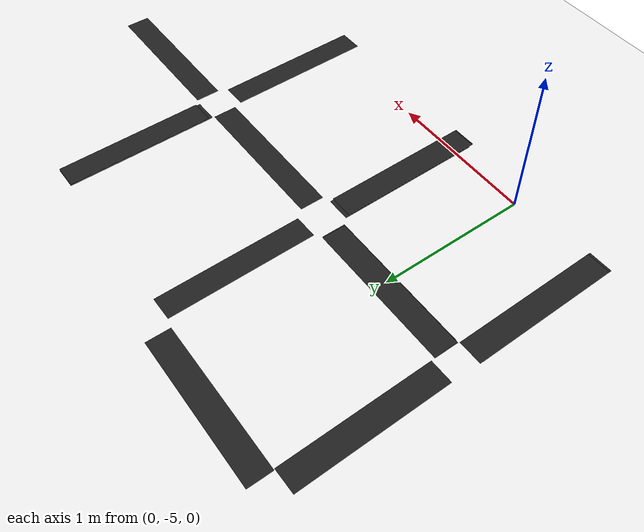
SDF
<sdf version="1.7">
 <world name="default">
  <model name="ground_plane">
   <static>1</static>
   <link name="link">
    <collision name="collision">
     <geometry><plane><normal>0 0 1</normal><size>100 100</size></plane></geometry>
     <surface>
      <contact><collide_bitmask>65535</collide_bitmask></contact>
      <friction><ode><mu>100</mu><mu2>50</mu2></ode></friction>
     </surface>
    </collision>
    <visual name="visual">
     <cast_shadows>0</cast_shadows>
     <geometry><plane><normal>0 0 1</normal><size>100 100</size></plane></geometry>
     <material>
      <script><uri>file://media/materials/scripts/gazebo.material</uri><name>Gazebo/White</name></script>
     </material>
    </visual>
   </link>
  </model>
  <model name="unit_box_clone_0_clone_clone_0_clone_clone">
   <link name="link">
    <inertial>
     <mass>1</mass>
     <inertia>
      <ixx>0.166667</ixx>
      <ixy>0</ixy>
      <ixz>0</ixz>
      <iyy>0.166667</iyy>
      <iyz>0</iyz>
      <izz>0.166667</izz>
     </inertia>
    </inertial>
    <visual name="visual">
     <geometry><box><size>0.983697 0.160776 0.000937</size></box></geometry>
     <material>
      <script><name>Gazebo/Black</name><uri>file://media/materials/scripts/gazebo.material</uri></script>
      <shader type="pixel"><normal_map>__default__</normal_map></shader>
      <ambient>0 0 0 1</ambient>
      <diffuse>0 0 0 1</diffuse>
      <specular>0.1 0.1 0.1 1</specular>
      <emissive>0 0 0 1</emissive>
     </material>
    </visual>
    <collision name="collision">
     <geometry><box><size>0.983697 0.160776 0.000937</size></box></geometry>
     <surface>
      <friction>
       <ode><mu>1</mu><mu2>1</mu2><fdir1>0 0 0</fdir1><slip1>0</slip1><slip2>0</slip2></ode>
       <torsional>
        <coefficient>1</coefficient>
        <patch_radius>0</patch_radius>
        <surface_radius>0</surface_radius>
        <use_patch_radius>1</use_patch_radius>
        <ode><slip>0</slip></ode>
       </torsional>
      </friction>
      <bounce><restitution_coefficient>0</restitution_coefficient><threshold>1e+06</threshold></bounce>
      <contact>
       <collide_without_contact>0</collide_without_contact>
       <collide_without_contact_bitmask>1</collide_without_contact_bitmask>
       <collide_bitmask>1</collide_bitmask>
       <ode>
        <soft_cfm>0</soft_cfm>
        <soft_erp>0.2</soft_erp>
        <kp>1e+13</kp>
        <kd>1</kd>
        <max_vel>0.01</max_vel>
        <min_depth>0</min_depth>
       </ode>
       <bullet>
        <split_impulse>1</split_impulse>
        <split_impulse_penetration_threshold>-0.01</split_impulse_penetration_threshold>
        <soft_cfm>0</soft_cfm>
        <soft_erp>0.2</soft_erp>
        <kp>1e+13</kp>
        <kd>1</kd>
       </bullet>
      </contact>
     </surface>
    </collision>
   </link>
   <static>0</static>
   <pose>0.595049 -3.38053 0.000464 0 -9e-06 -1.56217</pose>
  </model>
  <model name="unit_box_clone_0_clone_clone_0_clone_clone_clone">
   <link name="link">
    <inertial>
     <mass>1</mass>
     <inertia>
      <ixx>0.166667</ixx>
      <ixy>0</ixy>
      <ixz>0</ixz>
      <iyy>0.166667</iyy>
      <iyz>0</iyz>
      <izz>0.166667</izz>
     </inertia>
    </inertial>
    <visual name="visual">
     <geometry><box><size>1 0.160776 0.000937</size></box></geometry>
     <material>
      <script><name>Gazebo/Black</name><uri>file://media/materials/scripts/gazebo.material</uri></script>
      <shader type="pixel"><normal_map>__default__</normal_map></shader>
      <ambient>0 0 0 1</ambient>
      <diffuse>0 0 0 1</diffuse>
      <specular>0.1 0.1 0.1 1</specular>
      <emissive>0 0 0 1</emissive>
     </material>
    </visual>
    <collision name="collision">
     <geometry><box><size>1 0.160776 0.000937</size></box></geometry>
     <surface>
      <friction>
       <ode><mu>1</mu><mu2>1</mu2><fdir1>0 0 0</fdir1><slip1>0</slip1><slip2>0</slip2></ode>
       <torsional>
        <coefficient>1</coefficient>
        <patch_radius>0</patch_radius>
        <surface_radius>0</surface_radius>
        <use_patch_radius>1</use_patch_radius>
        <ode><slip>0</slip></ode>
       </torsional>
      </friction>
      <bounce><restitution_coefficient>0</restitution_coefficient><threshold>1e+06</threshold></bounce>
      <contact>
       <collide_without_contact>0</collide_without_contact>
       <collide_without_contact_bitmask>1</collide_without_contact_bitmask>
       <collide_bitmask>1</collide_bitmask>
       <ode>
        <soft_cfm>0</soft_cfm>
        <soft_erp>0.2</soft_erp>
        <kp>1e+13</kp>
        <kd>1</kd>
        <max_vel>0.01</max_vel>
        <min_depth>0</min_depth>
       </ode>
       <bullet>
        <split_impulse>1</split_impulse>
        <split_impulse_penetration_threshold>-0.01</split_impulse_penetration_threshold>
        <soft_cfm>0</soft_cfm>
        <soft_erp>0.2</soft_erp>
        <kp>1e+13</kp>
        <kd>1</kd>
       </bullet>
      </contact>
     </surface>
    </collision>
   </link>
   <static>0</static>
   <pose>1.82845 -4.64722 0.000469 0 0 -1.56225</pose>
  </model>
  <model name="unit_box_clone_0_clone_clone_0_clone_clone_clone_1">
   <link name="link">
    <inertial>
     <mass>1</mass>
     <inertia>
      <ixx>0.166667</ixx>
      <ixy>0</ixy>
      <ixz>0</ixz>
      <iyy>0.166667</iyy>
      <iyz>0</iyz>
      <izz>0.166667</izz>
     </inertia>
    </inertial>
    <visual name="visual">
     <geometry><box><size>1 0.160776 0.000937</size></box></geometry>
     <material>
      <script><name>Gazebo/Black</name><uri>file://media/materials/scripts/gazebo.material</uri></script>
      <shader type="pixel"><normal_map>__default__</normal_map></shader>
      <ambient>0 0 0 1</ambient>
      <diffuse>0 0 0 1</diffuse>
      <specular>0.1 0.1 0.1 1</specular>
      <emissive>0 0 0 1</emissive>
     </material>
    </visual>
    <collision name="collision">
     <geometry><box><size>1 0.160776 0.000937</size></box></geometry>
     <surface>
      <friction>
       <ode><mu>1</mu><mu2>1</mu2><fdir1>0 0 0</fdir1><slip1>0</slip1><slip2>0</slip2></ode>
       <torsional>
        <coefficient>1</coefficient>
        <patch_radius>0</patch_radius>
        <surface_radius>0</surface_radius>
        <use_patch_radius>1</use_patch_radius>
        <ode><slip>0</slip></ode>
       </torsional>
      </friction>
      <bounce><restitution_coefficient>0</restitution_coefficient><threshold>1e+06</threshold></bounce>
      <contact>
       <collide_without_contact>0</collide_without_contact>
       <collide_without_contact_bitmask>1</collide_without_contact_bitmask>
       <collide_bitmask>1</collide_bitmask>
       <ode>
        <soft_cfm>0</soft_cfm>
        <soft_erp>0.2</soft_erp>
        <kp>1e+13</kp>
        <kd>1</kd>
        <max_vel>0.01</max_vel>
        <min_depth>0</min_depth>
       </ode>
       <bullet>
        <split_impulse>1</split_impulse>
        <split_impulse_penetration_threshold>-0.01</split_impulse_penetration_threshold>
        <soft_cfm>0</soft_cfm>
        <soft_erp>0.2</soft_erp>
        <kp>1e+13</kp>
        <kd>1</kd>
       </bullet>
      </contact>
     </surface>
    </collision>
   </link>
   <static>0</static>
   <pose>-0.613913 -4.59039 0.000463 -1e-06 1.1e-05 -1.562</pose>
  </model>
  <model name="unit_box_clone_0_clone_clone_0_clone_1">
   <link name="link">
    <inertial>
     <mass>1</mass>
     <inertia>
      <ixx>0.166667</ixx>
      <ixy>0</ixy>
      <ixz>0</ixz>
      <iyy>0.166667</iyy>
      <iyz>0</iyz>
      <izz>0.166667</izz>
     </inertia>
    </inertial>
    <visual name="visual">
     <geometry><box><size>1 0.160776 0.000937</size></box></geometry>
     <material>
      <script><name>Gazebo/Black</name><uri>file://media/materials/scripts/gazebo.material</uri></script>
      <shader type="pixel"><normal_map>__default__</normal_map></shader>
      <ambient>0 0 0 1</ambient>
      <diffuse>0 0 0 1</diffuse>
      <specular>0.1 0.1 0.1 1</specular>
      <emissive>0 0 0 1</emissive>
     </material>
    </visual>
    <collision name="collision">
     <geometry><box><size>1 0.160776 0.000937</size></box></geometry>
     <surface>
      <friction>
       <ode><mu>1</mu><mu2>1</mu2><fdir1>0 0 0</fdir1><slip1>0</slip1><slip2>0</slip2></ode>
       <torsional>
        <coefficient>1</coefficient>
        <patch_radius>0</patch_radius>
        <surface_radius>0</surface_radius>
        <use_patch_radius>1</use_patch_radius>
        <ode><slip>0</slip></ode>
       </torsional>
      </friction>
      <bounce><restitution_coefficient>0</restitution_coefficient><threshold>1e+06</threshold></bounce>
      <contact>
       <collide_without_contact>0</collide_without_contact>
       <collide_without_contact_bitmask>1</collide_without_contact_bitmask>
       <collide_bitmask>1</collide_bitmask>
       <ode>
        <soft_cfm>0</soft_cfm>
        <soft_erp>0.2</soft_erp>
        <kp>1e+13</kp>
        <kd>1</kd>
        <max_vel>0.01</max_vel>
        <min_depth>0</min_depth>
       </ode>
       <bullet>
        <split_impulse>1</split_impulse>
        <split_impulse_penetration_threshold>-0.01</split_impulse_penetration_threshold>
        <soft_cfm>0</soft_cfm>
        <soft_erp>0.2</soft_erp>
        <kp>1e+13</kp>
        <kd>1</kd>
       </bullet>
      </contact>
     </surface>
    </collision>
   </link>
   <static>0</static>
   <pose>-0.021603 -3.98781 0.000431 1.6e-05 -6.2e-05 0.000146</pose>
  </model>
  <model name="unit_box_clone_0_clone_clone_0_clone_clone_1">
   <link name="link">
    <inertial>
     <mass>1</mass>
     <inertia>
      <ixx>0.166667</ixx>
      <ixy>0</ixy>
      <ixz>0</ixz>
      <iyy>0.166667</iyy>
      <iyz>0</iyz>
      <izz>0.166667</izz>
     </inertia>
    </inertial>
    <visual name="visual">
     <geometry><box><size>1 0.160776 0.000937</size></box></geometry>
     <material>
      <script><name>Gazebo/Black</name><uri>file://media/materials/scripts/gazebo.material</uri></script>
      <shader type="pixel"><normal_map>__default__</normal_map></shader>
      <ambient>0 0 0 1</ambient>
      <diffuse>0 0 0 1</diffuse>
      <specular>0.1 0.1 0.1 1</specular>
      <emissive>0 0 0 1</emissive>
     </material>
    </visual>
    <collision name="collision">
     <geometry><box><size>1 0.160776 0.000937</size></box></geometry>
     <surface>
      <friction>
       <ode><mu>1</mu><mu2>1</mu2><fdir1>0 0 0</fdir1><slip1>0</slip1><slip2>0</slip2></ode>
       <torsional>
        <coefficient>1</coefficient>
        <patch_radius>0</patch_radius>
        <surface_radius>0</surface_radius>
        <use_patch_radius>1</use_patch_radius>
        <ode><slip>0</slip></ode>
       </torsional>
      </friction>
      <bounce><restitution_coefficient>0</restitution_coefficient><threshold>1e+06</threshold></bounce>
      <contact>
       <collide_without_contact>0</collide_without_contact>
       <collide_without_contact_bitmask>1</collide_without_contact_bitmask>
       <collide_bitmask>1</collide_bitmask>
       <ode>
        <soft_cfm>0</soft_cfm>
        <soft_erp>0.2</soft_erp>
        <kp>1e+13</kp>
        <kd>1</kd>
        <max_vel>0.01</max_vel>
        <min_depth>0</min_depth>
       </ode>
       <bullet>
        <split_impulse>1</split_impulse>
        <split_impulse_penetration_threshold>-0.01</split_impulse_penetration_threshold>
        <soft_cfm>0</soft_cfm>
        <soft_erp>0.2</soft_erp>
        <kp>1e+13</kp>
        <kd>1</kd>
       </bullet>
      </contact>
     </surface>
    </collision>
   </link>
   <static>0</static>
   <pose>1.22708 -4.01051 0.000466 -0 -5e-06 -3.7e-05</pose>
  </model>
  <model name="unit_box_clone_0_clone_clone_0_clone_clone_0_clone">
   <link name="link">
    <inertial>
     <mass>1</mass>
     <inertia>
      <ixx>0.166667</ixx>
      <ixy>0</ixy>
      <ixz>0</ixz>
      <iyy>0.166667</iyy>
      <iyz>0</iyz>
      <izz>0.166667</izz>
     </inertia>
    </inertial>
    <visual name="visual">
     <geometry><box><size>1 0.160776 0.000937</size></box></geometry>
     <material>
      <script><name>Gazebo/Black</name><uri>file://media/materials/scripts/gazebo.material</uri></script>
      <shader type="pixel"><normal_map>__default__</normal_map></shader>
      <ambient>0 0 0 1</ambient>
      <diffuse>0 0 0 1</diffuse>
      <specular>0.1 0.1 0.1 1</specular>
      <emissive>0 0 0 1</emissive>
     </material>
    </visual>
    <collision name="collision">
     <geometry><box><size>1 0.160776 0.000937</size></box></geometry>
     <surface>
      <friction>
       <ode><mu>1</mu><mu2>1</mu2><fdir1>0 0 0</fdir1><slip1>0</slip1><slip2>0</slip2></ode>
       <torsional>
        <coefficient>1</coefficient>
        <patch_radius>0</patch_radius>
        <surface_radius>0</surface_radius>
        <use_patch_radius>1</use_patch_radius>
        <ode><slip>0</slip></ode>
       </torsional>
      </friction>
      <bounce><restitution_coefficient>0</restitution_coefficient><threshold>1e+06</threshold></bounce>
      <contact>
       <collide_without_contact>0</collide_without_contact>
       <collide_without_contact_bitmask>1</collide_without_contact_bitmask>
       <collide_bitmask>1</collide_bitmask>
       <ode>
        <soft_cfm>0</soft_cfm>
        <soft_erp>0.2</soft_erp>
        <kp>1e+13</kp>
        <kd>1</kd>
        <max_vel>0.01</max_vel>
        <min_depth>0</min_depth>
       </ode>
       <bullet>
        <split_impulse>1</split_impulse>
        <split_impulse_penetration_threshold>-0.01</split_impulse_penetration_threshold>
        <soft_cfm>0</soft_cfm>
        <soft_erp>0.2</soft_erp>
        <kp>1e+13</kp>
        <kd>1</kd>
       </bullet>
      </contact>
     </surface>
    </collision>
   </link>
   <static>0</static>
   <pose>2.43435 -4.00376 0.000469 0 -0 0.00022</pose>
  </model>
  <model name="unit_box_clone_0_clone_clone_0_clone_clone_clone_2">
   <link name="link">
    <inertial>
     <mass>1</mass>
     <inertia>
      <ixx>0.166667</ixx>
      <ixy>0</ixy>
      <ixz>0</ixz>
      <iyy>0.166667</iyy>
      <iyz>0</iyz>
      <izz>0.166667</izz>
     </inertia>
    </inertial>
    <visual name="visual">
     <geometry><box><size>1 0.160776 0.000937</size></box></geometry>
     <material>
      <script><name>Gazebo/Black</name><uri>file://media/materials/scripts/gazebo.material</uri></script>
      <shader type="pixel"><normal_map>__default__</normal_map></shader>
      <ambient>0 0 0 1</ambient>
      <diffuse>0 0 0 1</diffuse>
      <specular>0.1 0.1 0.1 1</specular>
      <emissive>0 0 0 1</emissive>
     </material>
    </visual>
    <collision name="collision">
     <geometry><box><size>1 0.160776 0.000937</size></box></geometry>
     <surface>
      <friction>
       <ode><mu>1</mu><mu2>1</mu2><fdir1>0 0 0</fdir1><slip1>0</slip1><slip2>0</slip2></ode>
       <torsional>
        <coefficient>1</coefficient>
        <patch_radius>0</patch_radius>
        <surface_radius>0</surface_radius>
        <use_patch_radius>1</use_patch_radius>
        <ode><slip>0</slip></ode>
       </torsional>
      </friction>
      <bounce><restitution_coefficient>0</restitution_coefficient><threshold>1e+06</threshold></bounce>
      <contact>
       <collide_without_contact>0</collide_without_contact>
       <collide_without_contact_bitmask>1</collide_without_contact_bitmask>
       <collide_bitmask>1</collide_bitmask>
       <ode>
        <soft_cfm>0</soft_cfm>
        <soft_erp>0.2</soft_erp>
        <kp>1e+13</kp>
        <kd>1</kd>
        <max_vel>0.01</max_vel>
        <min_depth>0</min_depth>
       </ode>
       <bullet>
        <split_impulse>1</split_impulse>
        <split_impulse_penetration_threshold>-0.01</split_impulse_penetration_threshold>
        <soft_cfm>0</soft_cfm>
        <soft_erp>0.2</soft_erp>
        <kp>1e+13</kp>
        <kd>1</kd>
       </bullet>
      </contact>
     </surface>
    </collision>
   </link>
   <static>0</static>
   <pose>0.60485 -4.63572 0.002211 -3e-06 4.3e-05 -1.56198</pose>
  </model>
  <model name="unit_box_clone_0_clone_clone_0_clone_clone_clone_3">
   <link name="link">
    <inertial>
     <mass>1</mass>
     <inertia>
      <ixx>0.166667</ixx>
      <ixy>0</ixy>
      <ixz>0</ixz>
      <iyy>0.166667</iyy>
      <iyz>0</iyz>
      <izz>0.166667</izz>
     </inertia>
    </inertial>
    <visual name="visual">
     <geometry><box><size>1 0.160776 0.000937</size></box></geometry>
     <material>
      <script><name>Gazebo/Black</name><uri>file://media/materials/scripts/gazebo.material</uri></script>
      <shader type="pixel"><normal_map>__default__</normal_map></shader>
      <ambient>0 0 0 1</ambient>
      <diffuse>0 0 0 1</diffuse>
      <specular>0.1 0.1 0.1 1</specular>
      <emissive>0 0 0 1</emissive>
     </material>
    </visual>
    <collision name="collision">
     <geometry><box><size>1 0.160776 0.000937</size></box></geometry>
     <surface>
      <friction>
       <ode><mu>1</mu><mu2>1</mu2><fdir1>0 0 0</fdir1><slip1>0</slip1><slip2>0</slip2></ode>
       <torsional>
        <coefficient>1</coefficient>
        <patch_radius>0</patch_radius>
        <surface_radius>0</surface_radius>
        <use_patch_radius>1</use_patch_radius>
        <ode><slip>0</slip></ode>
       </torsional>
      </friction>
      <bounce><restitution_coefficient>0</restitution_coefficient><threshold>1e+06</threshold></bounce>
      <contact>
       <collide_without_contact>0</collide_without_contact>
       <collide_without_contact_bitmask>1</collide_without_contact_bitmask>
       <collide_bitmask>1</collide_bitmask>
       <ode>
        <soft_cfm>0</soft_cfm>
        <soft_erp>0.2</soft_erp>
        <kp>1e+13</kp>
        <kd>1</kd>
        <max_vel>0.01</max_vel>
        <min_depth>0</min_depth>
       </ode>
       <bullet>
        <split_impulse>1</split_impulse>
        <split_impulse_penetration_threshold>-0.01</split_impulse_penetration_threshold>
        <soft_cfm>0</soft_cfm>
        <soft_erp>0.2</soft_erp>
        <kp>1e+13</kp>
        <kd>1</kd>
       </bullet>
      </contact>
     </surface>
    </collision>
   </link>
   <static>0</static>
   <pose>1.81547 -3.39103 0.002112 6e-06 -4.7e-05 -1.56205</pose>
  </model>
  <model name="unit_box_clone_0_clone_clone_0_clone_0_clone_3">
   <link name="link">
    <inertial>
     <mass>1</mass>
     <inertia>
      <ixx>0.166667</ixx>
      <ixy>0</ixy>
      <ixz>0</ixz>
      <iyy>0.166667</iyy>
      <iyz>0</iyz>
      <izz>0.166667</izz>
     </inertia>
    </inertial>
    <visual name="visual">
     <geometry><box><size>1 0.160776 0.000937</size></box></geometry>
     <material>
      <script><name>Gazebo/Black</name><uri>file://media/materials/scripts/gazebo.material</uri></script>
      <shader type="pixel"><normal_map>__default__</normal_map></shader>
      <ambient>0 0 0 1</ambient>
      <diffuse>0 0 0 1</diffuse>
      <specular>0.1 0.1 0.1 1</specular>
      <emissive>0 0 0 1</emissive>
     </material>
    </visual>
    <collision name="collision">
     <geometry><box><size>1 0.160776 0.000937</size></box></geometry>
     <surface>
      <friction>
       <ode><mu>1</mu><mu2>1</mu2><fdir1>0 0 0</fdir1><slip1>0</slip1><slip2>0</slip2></ode>
       <torsional>
        <coefficient>1</coefficient>
        <patch_radius>0</patch_radius>
        <surface_radius>0</surface_radius>
        <use_patch_radius>1</use_patch_radius>
        <ode><slip>0</slip></ode>
       </torsional>
      </friction>
      <bounce><restitution_coefficient>0</restitution_coefficient><threshold>1e+06</threshold></bounce>
      <contact>
       <collide_without_contact>0</collide_without_contact>
       <collide_without_contact_bitmask>1</collide_without_contact_bitmask>
       <collide_bitmask>1</collide_bitmask>
       <ode>
        <soft_cfm>0</soft_cfm>
        <soft_erp>0.2</soft_erp>
        <kp>1e+13</kp>
        <kd>1</kd>
        <max_vel>0.01</max_vel>
        <min_depth>0</min_depth>
       </ode>
       <bullet>
        <split_impulse>1</split_impulse>
        <split_impulse_penetration_threshold>-0.01</split_impulse_penetration_threshold>
        <soft_cfm>0</soft_cfm>
        <soft_erp>0.2</soft_erp>
        <kp>1e+13</kp>
        <kd>1</kd>
       </bullet>
      </contact>
     </surface>
    </collision>
   </link>
   <static>0</static>
   <pose>-0.050158 -2.79227 0.001321 -8e-06 2.5e-05 -0.001262</pose>
  </model>
  <model name="unit_box_clone_0_clone_clone_0_clone_clone_clone_2_clone_clone">
   <link name="link">
    <inertial>
     <mass>1</mass>
     <inertia>
      <ixx>0.166667</ixx>
      <ixy>0</ixy>
      <ixz>0</ixz>
      <iyy>0.166667</iyy>
      <iyz>0</iyz>
      <izz>0.166667</izz>
     </inertia>
    </inertial>
    <visual name="visual">
     <geometry><box><size>1 0.160776 0.000937</size></box></geometry>
     <material>
      <script><name>Gazebo/Black</name><uri>file://media/materials/scripts/gazebo.material</uri></script>
      <shader type="pixel"><normal_map>__default__</normal_map></shader>
      <ambient>0 0 0 1</ambient>
      <diffuse>0 0 0 1</diffuse>
      <specular>0.1 0.1 0.1 1</specular>
      <emissive>0 0 0 1</emissive>
     </material>
    </visual>
    <collision name="collision">
     <geometry><box><size>1 0.160776 0.000937</size></box></geometry>
     <surface>
      <friction>
       <ode><mu>1</mu><mu2>1</mu2><fdir1>0 0 0</fdir1><slip1>0</slip1><slip2>0</slip2></ode>
       <torsional>
        <coefficient>1</coefficient>
        <patch_radius>0</patch_radius>
        <surface_radius>0</surface_radius>
        <use_patch_radius>1</use_patch_radius>
        <ode><slip>0</slip></ode>
       </torsional>
      </friction>
      <bounce><restitution_coefficient>0</restitution_coefficient><threshold>1e+06</threshold></bounce>
      <contact>
       <collide_without_contact>0</collide_without_contact>
       <collide_without_contact_bitmask>1</collide_without_contact_bitmask>
       <collide_bitmask>1</collide_bitmask>
       <ode>
        <soft_cfm>0</soft_cfm>
        <soft_erp>0.2</soft_erp>
        <kp>1e+13</kp>
        <kd>1</kd>
        <max_vel>0.01</max_vel>
        <min_depth>0</min_depth>
       </ode>
       <bullet>
        <split_impulse>1</split_impulse>
        <split_impulse_penetration_threshold>-0.01</split_impulse_penetration_threshold>
        <soft_cfm>0</soft_cfm>
        <soft_erp>0.2</soft_erp>
        <kp>1e+13</kp>
        <kd>1</kd>
       </bullet>
      </contact>
     </surface>
    </collision>
   </link>
   <static>0</static>
   <pose>-0.618157 -3.37885 0.000274 -0 -0.000389 -1.56199</pose>
  </model>
  <model name="unit_box_clone_0_clone_clone_0_clone_1_clone_0">
   <link name="link">
    <inertial>
     <mass>1</mass>
     <inertia>
      <ixx>0.166667</ixx>
      <ixy>0</ixy>
      <ixz>0</ixz>
      <iyy>0.166667</iyy>
      <iyz>0</iyz>
      <izz>0.166667</izz>
     </inertia>
    </inertial>
    <visual name="visual">
     <geometry><box><size>1 0.160776 0.000937</size></box></geometry>
     <material>
      <script><name>Gazebo/Black</name><uri>file://media/materials/scripts/gazebo.material</uri></script>
      <shader type="pixel"><normal_map>__default__</normal_map></shader>
      <ambient>0 0 0 1</ambient>
      <diffuse>0 0 0 1</diffuse>
      <specular>0.1 0.1 0.1 1</specular>
      <emissive>0 0 0 1</emissive>
     </material>
    </visual>
    <collision name="collision">
     <geometry><box><size>1 0.160776 0.000937</size></box></geometry>
     <surface>
      <friction>
       <ode><mu>1</mu><mu2>1</mu2><fdir1>0 0 0</fdir1><slip1>0</slip1><slip2>0</slip2></ode>
       <torsional>
        <coefficient>1</coefficient>
        <patch_radius>0</patch_radius>
        <surface_radius>0</surface_radius>
        <use_patch_radius>1</use_patch_radius>
        <ode><slip>0</slip></ode>
       </torsional>
      </friction>
      <bounce><restitution_coefficient>0</restitution_coefficient><threshold>1e+06</threshold></bounce>
      <contact>
       <collide_without_contact>0</collide_without_contact>
       <collide_without_contact_bitmask>1</collide_without_contact_bitmask>
       <collide_bitmask>1</collide_bitmask>
       <ode>
        <soft_cfm>0</soft_cfm>
        <soft_erp>0.2</soft_erp>
        <kp>1e+13</kp>
        <kd>1</kd>
        <max_vel>0.01</max_vel>
        <min_depth>0</min_depth>
       </ode>
       <bullet>
        <split_impulse>1</split_impulse>
        <split_impulse_penetration_threshold>-0.01</split_impulse_penetration_threshold>
        <soft_cfm>0</soft_cfm>
        <soft_erp>0.2</soft_erp>
        <kp>1e+13</kp>
        <kd>1</kd>
       </bullet>
      </contact>
     </surface>
    </collision>
   </link>
   <static>0</static>
   <pose>-0.02943 -3.98432 0.002273 2e-05 -5.9e-05 -0.000661</pose>
  </model>
  <model name="unit_box_clone_0_clone_clone_0_clone_1_clone_1">
   <link name="link">
    <inertial>
     <mass>1</mass>
     <inertia>
      <ixx>0.166667</ixx>
      <ixy>0</ixy>
      <ixz>0</ixz>
      <iyy>0.166667</iyy>
      <iyz>0</iyz>
      <izz>0.166667</izz>
     </inertia>
    </inertial>
    <visual name="visual">
     <geometry><box><size>1 0.160776 0.000937</size></box></geometry>
     <material>
      <script><name>Gazebo/Black</name><uri>file://media/materials/scripts/gazebo.material</uri></script>
      <shader type="pixel"><normal_map>__default__</normal_map></shader>
      <ambient>0 0 0 1</ambient>
      <diffuse>0 0 0 1</diffuse>
      <specular>0.1 0.1 0.1 1</specular>
      <emissive>0 0 0 1</emissive>
     </material>
    </visual>
    <collision name="collision">
     <geometry><box><size>1 0.160776 0.000937</size></box></geometry>
     <surface>
      <friction>
       <ode><mu>1</mu><mu2>1</mu2><fdir1>0 0 0</fdir1><slip1>0</slip1><slip2>0</slip2></ode>
       <torsional>
        <coefficient>1</coefficient>
        <patch_radius>0</patch_radius>
        <surface_radius>0</surface_radius>
        <use_patch_radius>1</use_patch_radius>
        <ode><slip>0</slip></ode>
       </torsional>
      </friction>
      <bounce><restitution_coefficient>0</restitution_coefficient><threshold>1e+06</threshold></bounce>
      <contact>
       <collide_without_contact>0</collide_without_contact>
       <collide_without_contact_bitmask>1</collide_without_contact_bitmask>
       <collide_bitmask>1</collide_bitmask>
       <ode>
        <soft_cfm>0</soft_cfm>
        <soft_erp>0.2</soft_erp>
        <kp>1e+13</kp>
        <kd>1</kd>
        <max_vel>0.01</max_vel>
        <min_depth>0</min_depth>
       </ode>
       <bullet>
        <split_impulse>1</split_impulse>
        <split_impulse_penetration_threshold>-0.01</split_impulse_penetration_threshold>
        <soft_cfm>0</soft_cfm>
        <soft_erp>0.2</soft_erp>
        <kp>1e+13</kp>
        <kd>1</kd>
       </bullet>
      </contact>
     </surface>
    </collision>
   </link>
   <static>0</static>
   <pose>-0.033801 -3.98436 0.001335 2e-05 -5.9e-05 0.000314</pose>
  </model>
  <model name="unit_box_clone_0_clone_clone_0_clone_clone_clone_1_clone">
   <link name="link">
    <inertial>
     <mass>1</mass>
     <inertia>
      <ixx>0.166667</ixx>
      <ixy>0</ixy>
      <ixz>0</ixz>
      <iyy>0.166667</iyy>
      <iyz>0</iyz>
      <izz>0.166667</izz>
     </inertia>
    </inertial>
    <visual name="visual">
     <geometry><box><size>1 0.160776 0.000937</size></box></geometry>
     <material>
      <script><name>Gazebo/Black</name><uri>file://media/materials/scripts/gazebo.material</uri></script>
      <shader type="pixel"><normal_map>__default__</normal_map></shader>
      <ambient>0 0 0 1</ambient>
      <diffuse>0 0 0 1</diffuse>
      <specular>0.1 0.1 0.1 1</specular>
      <emissive>0 0 0 1</emissive>
     </material>
    </visual>
    <collision name="collision">
     <geometry><box><size>1 0.160776 0.000937</size></box></geometry>
     <surface>
      <friction>
       <ode><mu>1</mu><mu2>1</mu2><fdir1>0 0 0</fdir1><slip1>0</slip1><slip2>0</slip2></ode>
       <torsional>
        <coefficient>1</coefficient>
        <patch_radius>0</patch_radius>
        <surface_radius>0</surface_radius>
        <use_patch_radius>1</use_patch_radius>
        <ode><slip>0</slip></ode>
       </torsional>
      </friction>
      <bounce><restitution_coefficient>0</restitution_coefficient><threshold>1e+06</threshold></bounce>
      <contact>
       <collide_without_contact>0</collide_without_contact>
       <collide_without_contact_bitmask>1</collide_without_contact_bitmask>
       <collide_bitmask>1</collide_bitmask>
       <ode>
        <soft_cfm>0</soft_cfm>
        <soft_erp>0.2</soft_erp>
        <kp>1e+13</kp>
        <kd>1</kd>
        <max_vel>0.01</max_vel>
        <min_depth>0</min_depth>
       </ode>
       <bullet>
        <split_impulse>1</split_impulse>
        <split_impulse_penetration_threshold>-0.01</split_impulse_penetration_threshold>
        <soft_cfm>0</soft_cfm>
        <soft_erp>0.2</soft_erp>
        <kp>1e+13</kp>
        <kd>1</kd>
       </bullet>
      </contact>
     </surface>
    </collision>
   </link>
   <static>0</static>
   <pose>-0.61367 -4.57451 0.001384 -3e-06 2.7e-05 -1.56186</pose>
  </model>
  <model name="unit_box_clone_0_clone_clone_0_clone_clone_clone_2_clone_0">
   <link name="link">
    <inertial>
     <mass>1</mass>
     <inertia>
      <ixx>0.166667</ixx>
      <ixy>0</ixy>
      <ixz>0</ixz>
      <iyy>0.166667</iyy>
      <iyz>0</iyz>
      <izz>0.166667</izz>
     </inertia>
    </inertial>
    <visual name="visual">
     <geometry><box><size>1 0.160776 0.000937</size></box></geometry>
     <material>
      <script><name>Gazebo/Black</name><uri>file://media/materials/scripts/gazebo.material</uri></script>
      <shader type="pixel"><normal_map>__default__</normal_map></shader>
      <ambient>0 0 0 1</ambient>
      <diffuse>0 0 0 1</diffuse>
      <specular>0.1 0.1 0.1 1</specular>
      <emissive>0 0 0 1</emissive>
     </material>
    </visual>
    <collision name="collision">
     <geometry><box><size>1 0.160776 0.000937</size></box></geometry>
     <surface>
      <friction>
       <ode><mu>1</mu><mu2>1</mu2><fdir1>0 0 0</fdir1><slip1>0</slip1><slip2>0</slip2></ode>
       <torsional>
        <coefficient>1</coefficient>
        <patch_radius>0</patch_radius>
        <surface_radius>0</surface_radius>
        <use_patch_radius>1</use_patch_radius>
        <ode><slip>0</slip></ode>
       </torsional>
      </friction>
      <bounce><restitution_coefficient>0</restitution_coefficient><threshold>1e+06</threshold></bounce>
      <contact>
       <collide_without_contact>0</collide_without_contact>
       <collide_without_contact_bitmask>1</collide_without_contact_bitmask>
       <collide_bitmask>1</collide_bitmask>
       <ode>
        <soft_cfm>0</soft_cfm>
        <soft_erp>0.2</soft_erp>
        <kp>1e+13</kp>
        <kd>1</kd>
        <max_vel>0.01</max_vel>
        <min_depth>0</min_depth>
       </ode>
       <bullet>
        <split_impulse>1</split_impulse>
        <split_impulse_penetration_threshold>-0.01</split_impulse_penetration_threshold>
        <soft_cfm>0</soft_cfm>
        <soft_erp>0.2</soft_erp>
        <kp>1e+13</kp>
        <kd>1</kd>
       </bullet>
      </contact>
     </surface>
    </collision>
   </link>
   <static>0</static>
   <pose>0.598091 -4.60853 0.000411 -1e-06 -0.000115 -1.56196</pose>
  </model>
  <model name="unit_box_clone_0_clone_clone_0_clone_clone_clone_2_clone_1">
   <link name="link">
    <inertial>
     <mass>1</mass>
     <inertia>
      <ixx>0.166667</ixx>
      <ixy>0</ixy>
      <ixz>0</ixz>
      <iyy>0.166667</iyy>
      <iyz>0</iyz>
      <izz>0.166667</izz>
     </inertia>
    </inertial>
    <visual name="visual">
     <geometry><box><size>1 0.160776 0.000937</size></box></geometry>
     <material>
      <script><name>Gazebo/Black</name><uri>file://media/materials/scripts/gazebo.material</uri></script>
      <shader type="pixel"><normal_map>__default__</normal_map></shader>
      <ambient>0 0 0 1</ambient>
      <diffuse>0 0 0 1</diffuse>
      <specular>0.1 0.1 0.1 1</specular>
      <emissive>0 0 0 1</emissive>
     </material>
    </visual>
    <collision name="collision">
     <geometry><box><size>1 0.160776 0.000937</size></box></geometry>
     <surface>
      <friction>
       <ode><mu>1</mu><mu2>1</mu2><fdir1>0 0 0</fdir1><slip1>0</slip1><slip2>0</slip2></ode>
       <torsional>
        <coefficient>1</coefficient>
        <patch_radius>0</patch_radius>
        <surface_radius>0</surface_radius>
        <use_patch_radius>1</use_patch_radius>
        <ode><slip>0</slip></ode>
       </torsional>
      </friction>
      <bounce><restitution_coefficient>0</restitution_coefficient><threshold>1e+06</threshold></bounce>
      <contact>
       <collide_without_contact>0</collide_without_contact>
       <collide_without_contact_bitmask>1</collide_without_contact_bitmask>
       <collide_bitmask>1</collide_bitmask>
       <ode>
        <soft_cfm>0</soft_cfm>
        <soft_erp>0.2</soft_erp>
        <kp>1e+13</kp>
        <kd>1</kd>
        <max_vel>0.01</max_vel>
        <min_depth>0</min_depth>
       </ode>
       <bullet>
        <split_impulse>1</split_impulse>
        <split_impulse_penetration_threshold>-0.01</split_impulse_penetration_threshold>
        <soft_cfm>0</soft_cfm>
        <soft_erp>0.2</soft_erp>
        <kp>1e+13</kp>
        <kd>1</kd>
       </bullet>
      </contact>
     </surface>
    </collision>
   </link>
   <static>0</static>
   <pose>0.603827 -4.64382 0.001282 -2e-06 2.6e-05 -1.56182</pose>
  </model>
  <model name="unit_box_clone_0_clone_clone_0_clone_clone_clone_2_clone_2">
   <link name="link">
    <inertial>
     <mass>1</mass>
     <inertia>
      <ixx>0.166667</ixx>
      <ixy>0</ixy>
      <ixz>0</ixz>
      <iyy>0.166667</iyy>
      <iyz>0</iyz>
      <izz>0.166667</izz>
     </inertia>
    </inertial>
    <visual name="visual">
     <geometry><box><size>1 0.160776 0.000937</size></box></geometry>
     <material>
      <script><name>Gazebo/Black</name><uri>file://media/materials/scripts/gazebo.material</uri></script>
      <shader type="pixel"><normal_map>__default__</normal_map></shader>
      <ambient>0 0 0 1</ambient>
      <diffuse>0 0 0 1</diffuse>
      <specular>0.1 0.1 0.1 1</specular>
      <emissive>0 0 0 1</emissive>
     </material>
    </visual>
    <collision name="collision">
     <geometry><box><size>1 0.160776 0.000937</size></box></geometry>
     <surface>
      <friction>
       <ode><mu>1</mu><mu2>1</mu2><fdir1>0 0 0</fdir1><slip1>0</slip1><slip2>0</slip2></ode>
       <torsional>
        <coefficient>1</coefficient>
        <patch_radius>0</patch_radius>
        <surface_radius>0</surface_radius>
        <use_patch_radius>1</use_patch_radius>
        <ode><slip>0</slip></ode>
       </torsional>
      </friction>
      <bounce><restitution_coefficient>0</restitution_coefficient><threshold>1e+06</threshold></bounce>
      <contact>
       <collide_without_contact>0</collide_without_contact>
       <collide_without_contact_bitmask>1</collide_without_contact_bitmask>
       <collide_bitmask>1</collide_bitmask>
       <ode>
        <soft_cfm>0</soft_cfm>
        <soft_erp>0.2</soft_erp>
        <kp>1e+13</kp>
        <kd>1</kd>
        <max_vel>0.01</max_vel>
        <min_depth>0</min_depth>
       </ode>
       <bullet>
        <split_impulse>1</split_impulse>
        <split_impulse_penetration_threshold>-0.01</split_impulse_penetration_threshold>
        <soft_cfm>0</soft_cfm>
        <soft_erp>0.2</soft_erp>
        <kp>1e+13</kp>
        <kd>1</kd>
       </bullet>
      </contact>
     </surface>
    </collision>
   </link>
   <static>0</static>
   <pose>1.80541 -3.38835 0.000341 2e-06 0.000255 -1.56204</pose>
  </model>
  <model name="unit_box_clone_0_clone_clone_0_clone_clone_clone_2_clone_3">
   <link name="link">
    <inertial>
     <mass>1</mass>
     <inertia>
      <ixx>0.166667</ixx>
      <ixy>0</ixy>
      <ixz>0</ixz>
      <iyy>0.166667</iyy>
      <iyz>0</iyz>
      <izz>0.166667</izz>
     </inertia>
    </inertial>
    <visual name="visual">
     <geometry><box><size>1 0.160776 0.000937</size></box></geometry>
     <material>
      <script><name>Gazebo/Black</name><uri>file://media/materials/scripts/gazebo.material</uri></script>
      <shader type="pixel"><normal_map>__default__</normal_map></shader>
      <ambient>0 0 0 1</ambient>
      <diffuse>0 0 0 1</diffuse>
      <specular>0.1 0.1 0.1 1</specular>
      <emissive>0 0 0 1</emissive>
     </material>
    </visual>
    <collision name="collision">
     <geometry><box><size>1 0.160776 0.000937</size></box></geometry>
     <surface>
      <friction>
       <ode><mu>1</mu><mu2>1</mu2><fdir1>0 0 0</fdir1><slip1>0</slip1><slip2>0</slip2></ode>
       <torsional>
        <coefficient>1</coefficient>
        <patch_radius>0</patch_radius>
        <surface_radius>0</surface_radius>
        <use_patch_radius>1</use_patch_radius>
        <ode><slip>0</slip></ode>
       </torsional>
      </friction>
      <bounce><restitution_coefficient>0</restitution_coefficient><threshold>1e+06</threshold></bounce>
      <contact>
       <collide_without_contact>0</collide_without_contact>
       <collide_without_contact_bitmask>1</collide_without_contact_bitmask>
       <collide_bitmask>1</collide_bitmask>
       <ode>
        <soft_cfm>0</soft_cfm>
        <soft_erp>0.2</soft_erp>
        <kp>1e+13</kp>
        <kd>1</kd>
        <max_vel>0.01</max_vel>
        <min_depth>0</min_depth>
       </ode>
       <bullet>
        <split_impulse>1</split_impulse>
        <split_impulse_penetration_threshold>-0.01</split_impulse_penetration_threshold>
        <soft_cfm>0</soft_cfm>
        <soft_erp>0.2</soft_erp>
        <kp>1e+13</kp>
        <kd>1</kd>
       </bullet>
      </contact>
     </surface>
    </collision>
   </link>
   <static>0</static>
   <pose>1.80562 -3.41464 0.001224 4e-06 5.4e-05 -1.56193</pose>
  </model>
 </world>
</sdf>
